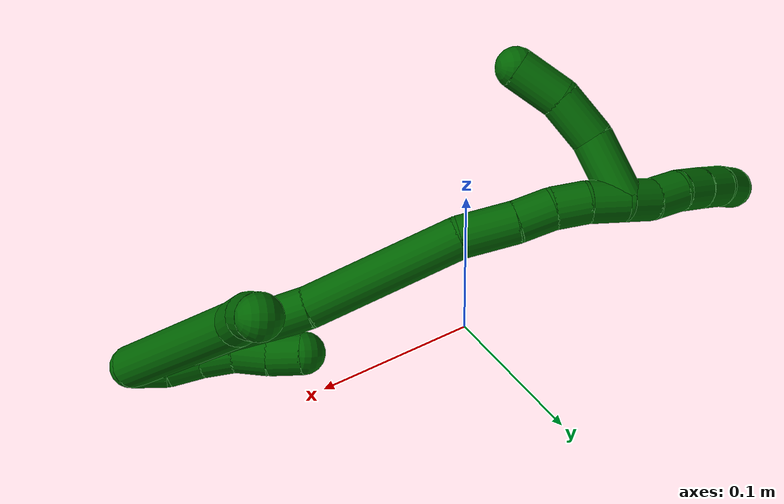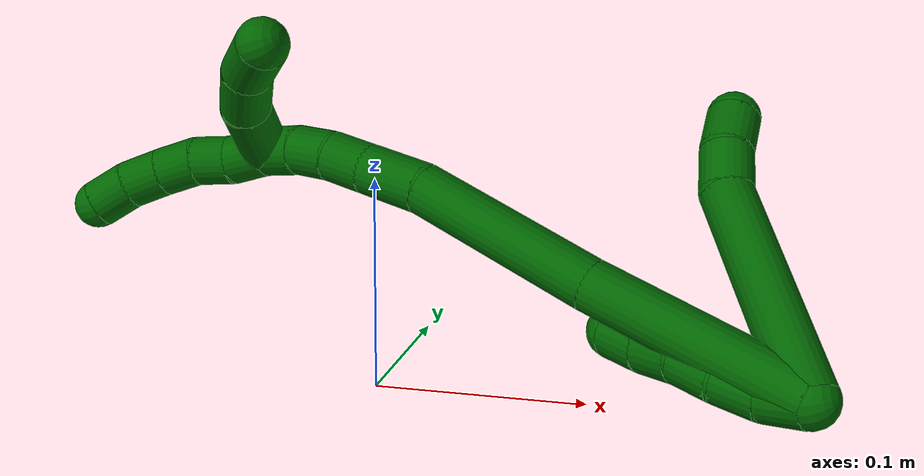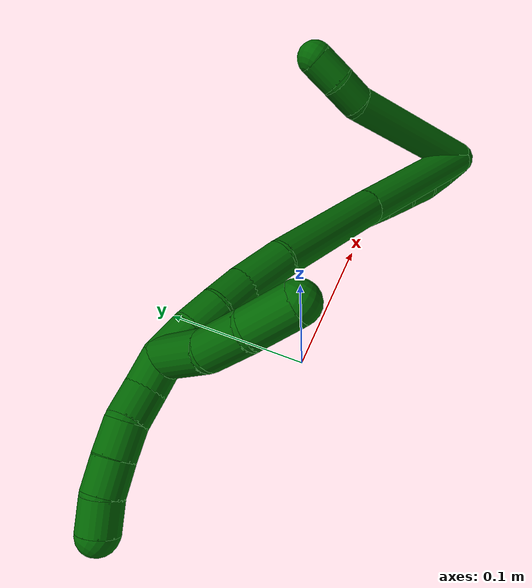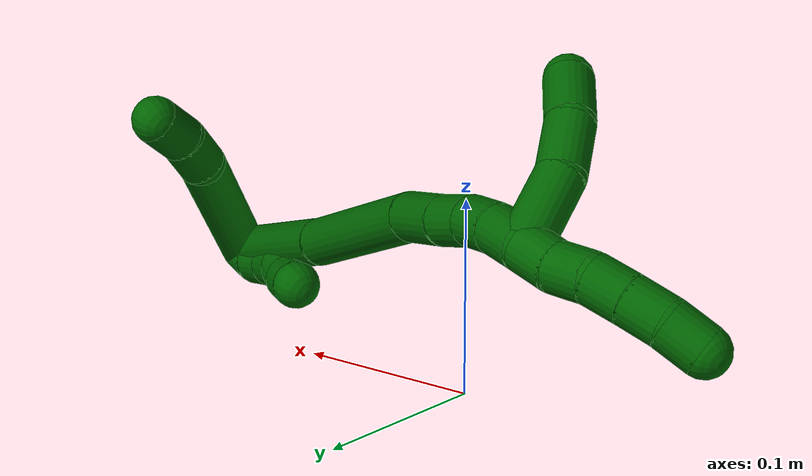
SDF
<sdf version="1.7">
 <world name="default">
  <model name="6">
   <static>0</static>
   <link name="6">
    <collision name="collision-cylinder-e_1_2_8">
     <pose>-0.043869 0.026108 -0.015091 -2.0949 -0.968567 1.47849</pose>
     <geometry><cylinder><radius>0.0125</radius><length>0.106468</length></cylinder></geometry>
     <surface>
      <friction><ode><mu>1.16</mu><mu2>1.16</mu2><slip1>0</slip1><slip2>0</slip2></ode></friction>
      <contact><ode><kp>1e+06</kp><kd>1</kd><max_vel>0</max_vel><min_depth>0.001</min_depth></ode></contact>
     </surface>
    </collision>
    <visual name="visual-cylinder-e_1_2_8">
     <pose>-0.043869 0.026108 -0.015091 -2.0949 -0.968567 1.47849</pose>
     <geometry><cylinder><radius>0.0125</radius><length>0.106468</length></cylinder></geometry>
     <material><ambient>0 0.392157 0.003922 1</ambient></material>
    </visual>
    <collision name="collision-cylinder-e_2_8_9">
     <pose>-0.096791 0.058365 -0.029929 -1.52967 -0.973849 0.940218</pose>
     <geometry><cylinder><radius>0.0125</radius><length>0.021892</length></cylinder></geometry>
     <surface>
      <friction><ode><mu>1.16</mu><mu2>1.16</mu2><slip1>0</slip1><slip2>0</slip2></ode></friction>
      <contact><ode><kp>1e+06</kp><kd>1</kd><max_vel>0</max_vel><min_depth>0.001</min_depth></ode></contact>
     </surface>
    </collision>
    <visual name="visual-cylinder-e_2_8_9">
     <pose>-0.096791 0.058365 -0.029929 -1.52967 -0.973849 0.940218</pose>
     <geometry><cylinder><radius>0.0125</radius><length>0.021892</length></cylinder></geometry>
     <material><ambient>0 0.392157 0.003922 1</ambient></material>
    </visual>
    <collision name="collision-cylinder-e_3_9_6">
     <pose>-0.11332 0.072254 -0.028567 -1.42844 -0.762868 0.669231</pose>
     <geometry><cylinder><radius>0.0125</radius><length>0.021639</length></cylinder></geometry>
     <surface>
      <friction><ode><mu>1.16</mu><mu2>1.16</mu2><slip1>0</slip1><slip2>0</slip2></ode></friction>
      <contact><ode><kp>1e+06</kp><kd>1</kd><max_vel>0</max_vel><min_depth>0.001</min_depth></ode></contact>
     </surface>
    </collision>
    <visual name="visual-cylinder-e_3_9_6">
     <pose>-0.11332 0.072254 -0.028567 -1.42844 -0.762868 0.669231</pose>
     <geometry><cylinder><radius>0.0125</radius><length>0.021639</length></cylinder></geometry>
     <material><ambient>0 0.392157 0.003922 1</ambient></material>
    </visual>
    <collision name="collision-cylinder-e_1_2_10">
     <pose>-0.002192 0.002211 -0.009503 -2.91298 -0.220958 1.53644</pose>
     <geometry><cylinder><radius>0.0125</radius><length>0.02</length></cylinder></geometry>
     <surface>
      <friction><ode><mu>1.16</mu><mu2>1.16</mu2><slip1>0</slip1><slip2>0</slip2></ode></friction>
      <contact><ode><kp>1e+06</kp><kd>1</kd><max_vel>0</max_vel><min_depth>0.001</min_depth></ode></contact>
     </surface>
    </collision>
    <visual name="visual-cylinder-e_1_2_10">
     <pose>-0.002192 0.002211 -0.009503 -2.91298 -0.220958 1.53644</pose>
     <geometry><cylinder><radius>0.0125</radius><length>0.02</length></cylinder></geometry>
     <material><ambient>0 0.392157 0.003922 1</ambient></material>
    </visual>
    <collision name="collision-cylinder-e_2_10_11">
     <pose>-0.009052 0.005617 -0.027768 -3.00615 -0.485747 2.60717</pose>
     <geometry><cylinder><radius>0.0125</radius><length>0.02</length></cylinder></geometry>
     <surface>
      <friction><ode><mu>1.16</mu><mu2>1.16</mu2><slip1>0</slip1><slip2>0</slip2></ode></friction>
      <contact><ode><kp>1e+06</kp><kd>1</kd><max_vel>0</max_vel><min_depth>0.001</min_depth></ode></contact>
     </surface>
    </collision>
    <visual name="visual-cylinder-e_2_10_11">
     <pose>-0.009052 0.005617 -0.027768 -3.00615 -0.485747 2.60717</pose>
     <geometry><cylinder><radius>0.0125</radius><length>0.02</length></cylinder></geometry>
     <material><ambient>0 0.392157 0.003922 1</ambient></material>
    </visual>
    <collision name="collision-cylinder-e_3_11_12">
     <pose>-0.01852 0.009466 -0.044892 -2.8341 -0.500541 2.05161</pose>
     <geometry><cylinder><radius>0.0125</radius><length>0.02</length></cylinder></geometry>
     <surface>
      <friction><ode><mu>1.16</mu><mu2>1.16</mu2><slip1>0</slip1><slip2>0</slip2></ode></friction>
      <contact><ode><kp>1e+06</kp><kd>1</kd><max_vel>0</max_vel><min_depth>0.001</min_depth></ode></contact>
     </surface>
    </collision>
    <visual name="visual-cylinder-e_3_11_12">
     <pose>-0.01852 0.009466 -0.044892 -2.8341 -0.500541 2.05161</pose>
     <geometry><cylinder><radius>0.0125</radius><length>0.02</length></cylinder></geometry>
     <material><ambient>0 0.392157 0.003922 1</ambient></material>
    </visual>
    <collision name="collision-cylinder-e_4_12_13">
     <pose>-0.026121 0.016439 -0.061827 -2.67503 -0.284058 1.08349</pose>
     <geometry><cylinder><radius>0.0125</radius><length>0.02</length></cylinder></geometry>
     <surface>
      <friction><ode><mu>1.16</mu><mu2>1.16</mu2><slip1>0</slip1><slip2>0</slip2></ode></friction>
      <contact><ode><kp>1e+06</kp><kd>1</kd><max_vel>0</max_vel><min_depth>0.001</min_depth></ode></contact>
     </surface>
    </collision>
    <visual name="visual-cylinder-e_4_12_13">
     <pose>-0.026121 0.016439 -0.061827 -2.67503 -0.284058 1.08349</pose>
     <geometry><cylinder><radius>0.0125</radius><length>0.02</length></cylinder></geometry>
     <material><ambient>0 0.392157 0.003922 1</ambient></material>
    </visual>
    <collision name="collision-cylinder-e_5_13_5">
     <pose>-0.033034 0.024514 -0.078707 -2.71684 -0.423537 1.56785</pose>
     <geometry><cylinder><radius>0.0125</radius><length>0.02</length></cylinder></geometry>
     <surface>
      <friction><ode><mu>1.16</mu><mu2>1.16</mu2><slip1>0</slip1><slip2>0</slip2></ode></friction>
      <contact><ode><kp>1e+06</kp><kd>1</kd><max_vel>0</max_vel><min_depth>0.001</min_depth></ode></contact>
     </surface>
    </collision>
    <visual name="visual-cylinder-e_5_13_5">
     <pose>-0.033034 0.024514 -0.078707 -2.71684 -0.423537 1.56785</pose>
     <geometry><cylinder><radius>0.0125</radius><length>0.02</length></cylinder></geometry>
     <material><ambient>0 0.392157 0.003922 1</ambient></material>
    </visual>
    <collision name="collision-cylinder-e_1_2_14">
     <pose>-0.029981 0.007178 -0.043779 -2.97908 -0.594307 2.62176</pose>
     <geometry><cylinder><radius>0.0125</radius><length>0.107089</length></cylinder></geometry>
     <surface>
      <friction><ode><mu>1.16</mu><mu2>1.16</mu2><slip1>0</slip1><slip2>0</slip2></ode></friction>
      <contact><ode><kp>1e+06</kp><kd>1</kd><max_vel>0</max_vel><min_depth>0.001</min_depth></ode></contact>
     </surface>
    </collision>
    <visual name="visual-cylinder-e_1_2_14">
     <pose>-0.029981 0.007178 -0.043779 -2.97908 -0.594307 2.62176</pose>
     <geometry><cylinder><radius>0.0125</radius><length>0.107089</length></cylinder></geometry>
     <material><ambient>0 0.392157 0.003922 1</ambient></material>
    </visual>
    <collision name="collision-cylinder-e_2_14_15">
     <pose>-0.089269 0.016484 -0.124671 -3.08431 -0.66759 2.97672</pose>
     <geometry><cylinder><radius>0.0125</radius><length>0.094673</length></cylinder></geometry>
     <surface>
      <friction><ode><mu>1.16</mu><mu2>1.16</mu2><slip1>0</slip1><slip2>0</slip2></ode></friction>
      <contact><ode><kp>1e+06</kp><kd>1</kd><max_vel>0</max_vel><min_depth>0.001</min_depth></ode></contact>
     </surface>
    </collision>
    <visual name="visual-cylinder-e_2_14_15">
     <pose>-0.089269 0.016484 -0.124671 -3.08431 -0.66759 2.97672</pose>
     <geometry><cylinder><radius>0.0125</radius><length>0.094673</length></cylinder></geometry>
     <material><ambient>0 0.392157 0.003922 1</ambient></material>
    </visual>
    <collision name="collision-cylinder-e_3_15_16">
     <pose>-0.126319 0.020541 -0.176403 -3.01041 -0.483616 2.62104</pose>
     <geometry><cylinder><radius>0.0125</radius><length>0.03331</length></cylinder></geometry>
     <surface>
      <friction><ode><mu>1.16</mu><mu2>1.16</mu2><slip1>0</slip1><slip2>0</slip2></ode></friction>
      <contact><ode><kp>1e+06</kp><kd>1</kd><max_vel>0</max_vel><min_depth>0.001</min_depth></ode></contact>
     </surface>
    </collision>
    <visual name="visual-cylinder-e_3_15_16">
     <pose>-0.126319 0.020541 -0.176403 -3.01041 -0.483616 2.62104</pose>
     <geometry><cylinder><radius>0.0125</radius><length>0.03331</length></cylinder></geometry>
     <material><ambient>0 0.392157 0.003922 1</ambient></material>
    </visual>
    <collision name="collision-cylinder-e_4_16_17">
     <pose>-0.139391 0.022572 -0.200498 -3.13077 -0.51212 3.10025</pose>
     <geometry><cylinder><radius>0.0125</radius><length>0.021744</length></cylinder></geometry>
     <surface>
      <friction><ode><mu>1.16</mu><mu2>1.16</mu2><slip1>0</slip1><slip2>0</slip2></ode></friction>
      <contact><ode><kp>1e+06</kp><kd>1</kd><max_vel>0</max_vel><min_depth>0.001</min_depth></ode></contact>
     </surface>
    </collision>
    <visual name="visual-cylinder-e_4_16_17">
     <pose>-0.139391 0.022572 -0.200498 -3.13077 -0.51212 3.10025</pose>
     <geometry><cylinder><radius>0.0125</radius><length>0.021744</length></cylinder></geometry>
     <material><ambient>0 0.392157 0.003922 1</ambient></material>
    </visual>
    <collision name="collision-cylinder-e_5_17_18">
     <pose>-0.148334 0.023703 -0.219655 -3.0358 -0.355624 2.56858</pose>
     <geometry><cylinder><radius>0.0125</radius><length>0.020769</length></cylinder></geometry>
     <surface>
      <friction><ode><mu>1.16</mu><mu2>1.16</mu2><slip1>0</slip1><slip2>0</slip2></ode></friction>
      <contact><ode><kp>1e+06</kp><kd>1</kd><max_vel>0</max_vel><min_depth>0.001</min_depth></ode></contact>
     </surface>
    </collision>
    <visual name="visual-cylinder-e_5_17_18">
     <pose>-0.148334 0.023703 -0.219655 -3.0358 -0.355624 2.56858</pose>
     <geometry><cylinder><radius>0.0125</radius><length>0.020769</length></cylinder></geometry>
     <material><ambient>0 0.392157 0.003922 1</ambient></material>
    </visual>
    <collision name="collision-cylinder-e_6_18_1">
     <pose>-0.153982 0.02602 -0.240281 -3.02436 -0.18238 2.00048</pose>
     <geometry><cylinder><radius>0.0125</radius><length>0.022415</length></cylinder></geometry>
     <surface>
      <friction><ode><mu>1.16</mu><mu2>1.16</mu2><slip1>0</slip1><slip2>0</slip2></ode></friction>
      <contact><ode><kp>1e+06</kp><kd>1</kd><max_vel>0</max_vel><min_depth>0.001</min_depth></ode></contact>
     </surface>
    </collision>
    <visual name="visual-cylinder-e_6_18_1">
     <pose>-0.153982 0.02602 -0.240281 -3.02436 -0.18238 2.00048</pose>
     <geometry><cylinder><radius>0.0125</radius><length>0.022415</length></cylinder></geometry>
     <material><ambient>0 0.392157 0.003922 1</ambient></material>
    </visual>
    <collision name="collision-cylinder-e_1_1_19">
     <pose>-0.165852 0.01153 -0.243675 1.12443 -0.512278 -0.327056</pose>
     <geometry><cylinder><radius>0.0125</radius><length>0.040139</length></cylinder></geometry>
     <surface>
      <friction><ode><mu>1.16</mu><mu2>1.16</mu2><slip1>0</slip1><slip2>0</slip2></ode></friction>
      <contact><ode><kp>1e+06</kp><kd>1</kd><max_vel>0</max_vel><min_depth>0.001</min_depth></ode></contact>
     </surface>
    </collision>
    <visual name="visual-cylinder-e_1_1_19">
     <pose>-0.165852 0.01153 -0.243675 1.12443 -0.512278 -0.327056</pose>
     <geometry><cylinder><radius>0.0125</radius><length>0.040139</length></cylinder></geometry>
     <material><ambient>0 0.392157 0.003922 1</ambient></material>
    </visual>
    <collision name="collision-cylinder-e_2_19_20">
     <pose>-0.181944 -0.013991 -0.226905 0.813001 -0.43633 -0.190291</pose>
     <geometry><cylinder><radius>0.0125</radius><length>0.029596</length></cylinder></geometry>
     <surface>
      <friction><ode><mu>1.16</mu><mu2>1.16</mu2><slip1>0</slip1><slip2>0</slip2></ode></friction>
      <contact><ode><kp>1e+06</kp><kd>1</kd><max_vel>0</max_vel><min_depth>0.001</min_depth></ode></contact>
     </surface>
    </collision>
    <visual name="visual-cylinder-e_2_19_20">
     <pose>-0.181944 -0.013991 -0.226905 0.813001 -0.43633 -0.190291</pose>
     <geometry><cylinder><radius>0.0125</radius><length>0.029596</length></cylinder></geometry>
     <material><ambient>0 0.392157 0.003922 1</ambient></material>
    </visual>
    <collision name="collision-cylinder-e_3_20_4">
     <pose>-0.191384 -0.032794 -0.205994 0.659293 -0.212187 -0.072837</pose>
     <geometry><cylinder><radius>0.0125</radius><length>0.030265</length></cylinder></geometry>
     <surface>
      <friction><ode><mu>1.16</mu><mu2>1.16</mu2><slip1>0</slip1><slip2>0</slip2></ode></friction>
      <contact><ode><kp>1e+06</kp><kd>1</kd><max_vel>0</max_vel><min_depth>0.001</min_depth></ode></contact>
     </surface>
    </collision>
    <visual name="visual-cylinder-e_3_20_4">
     <pose>-0.191384 -0.032794 -0.205994 0.659293 -0.212187 -0.072837</pose>
     <geometry><cylinder><radius>0.0125</radius><length>0.030265</length></cylinder></geometry>
     <material><ambient>0 0.392157 0.003922 1</ambient></material>
    </visual>
    <collision name="collision-cylinder-e_1_1_21">
     <pose>-0.155931 0.026436 -0.261188 3.05416 0.008416 0.191825</pose>
     <geometry><cylinder><radius>0.0125</radius><length>0.02</length></cylinder></geometry>
     <surface>
      <friction><ode><mu>1.16</mu><mu2>1.16</mu2><slip1>0</slip1><slip2>0</slip2></ode></friction>
      <contact><ode><kp>1e+06</kp><kd>1</kd><max_vel>0</max_vel><min_depth>0.001</min_depth></ode></contact>
     </surface>
    </collision>
    <visual name="visual-cylinder-e_1_1_21">
     <pose>-0.155931 0.026436 -0.261188 3.05416 0.008416 0.191825</pose>
     <geometry><cylinder><radius>0.0125</radius><length>0.02</length></cylinder></geometry>
     <material><ambient>0 0.392157 0.003922 1</ambient></material>
    </visual>
    <collision name="collision-cylinder-e_2_21_22">
     <pose>-0.157809 0.023652 -0.280767 2.94545 -0.197499 -1.57774</pose>
     <geometry><cylinder><radius>0.0125</radius><length>0.02</length></cylinder></geometry>
     <surface>
      <friction><ode><mu>1.16</mu><mu2>1.16</mu2><slip1>0</slip1><slip2>0</slip2></ode></friction>
      <contact><ode><kp>1e+06</kp><kd>1</kd><max_vel>0</max_vel><min_depth>0.001</min_depth></ode></contact>
     </surface>
    </collision>
    <visual name="visual-cylinder-e_2_21_22">
     <pose>-0.157809 0.023652 -0.280767 2.94545 -0.197499 -1.57774</pose>
     <geometry><cylinder><radius>0.0125</radius><length>0.02</length></cylinder></geometry>
     <material><ambient>0 0.392157 0.003922 1</ambient></material>
    </visual>
    <collision name="collision-cylinder-e_3_22_23">
     <pose>-0.158987 0.019227 -0.300032 2.88663 0.078494 0.594557</pose>
     <geometry><cylinder><radius>0.0125</radius><length>0.02</length></cylinder></geometry>
     <surface>
      <friction><ode><mu>1.16</mu><mu2>1.16</mu2><slip1>0</slip1><slip2>0</slip2></ode></friction>
      <contact><ode><kp>1e+06</kp><kd>1</kd><max_vel>0</max_vel><min_depth>0.001</min_depth></ode></contact>
     </surface>
    </collision>
    <visual name="visual-cylinder-e_3_22_23">
     <pose>-0.158987 0.019227 -0.300032 2.88663 0.078494 0.594557</pose>
     <geometry><cylinder><radius>0.0125</radius><length>0.02</length></cylinder></geometry>
     <material><ambient>0 0.392157 0.003922 1</ambient></material>
    </visual>
    <collision name="collision-cylinder-e_4_23_24">
     <pose>-0.156953 0.013987 -0.319219 2.86338 0.125324 0.842615</pose>
     <geometry><cylinder><radius>0.0125</radius><length>0.02</length></cylinder></geometry>
     <surface>
      <friction><ode><mu>1.16</mu><mu2>1.16</mu2><slip1>0</slip1><slip2>0</slip2></ode></friction>
      <contact><ode><kp>1e+06</kp><kd>1</kd><max_vel>0</max_vel><min_depth>0.001</min_depth></ode></contact>
     </surface>
    </collision>
    <visual name="visual-cylinder-e_4_23_24">
     <pose>-0.156953 0.013987 -0.319219 2.86338 0.125324 0.842615</pose>
     <geometry><cylinder><radius>0.0125</radius><length>0.02</length></cylinder></geometry>
     <material><ambient>0 0.392157 0.003922 1</ambient></material>
    </visual>
    <collision name="collision-cylinder-e_5_24_3">
     <pose>-0.152494 0.007858 -0.337597 2.77386 0.326691 1.45034</pose>
     <geometry><cylinder><radius>0.0125</radius><length>0.02</length></cylinder></geometry>
     <surface>
      <friction><ode><mu>1.16</mu><mu2>1.16</mu2><slip1>0</slip1><slip2>0</slip2></ode></friction>
      <contact><ode><kp>1e+06</kp><kd>1</kd><max_vel>0</max_vel><min_depth>0.001</min_depth></ode></contact>
     </surface>
    </collision>
    <visual name="visual-cylinder-e_5_24_3">
     <pose>-0.152494 0.007858 -0.337597 2.77386 0.326691 1.45034</pose>
     <geometry><cylinder><radius>0.0125</radius><length>0.02</length></cylinder></geometry>
     <material><ambient>0 0.392157 0.003922 1</ambient></material>
    </visual>
    <collision name="collision-sphere-3">
     <pose>-0.149285 0.004453 -0.346435 0 -0 0</pose>
     <geometry><sphere><radius>0.0125</radius></sphere></geometry>
     <surface>
      <friction><ode><mu>1.16</mu><mu2>1.16</mu2><slip1>0</slip1><slip2>0</slip2></ode></friction>
      <contact><ode><kp>1e+06</kp><kd>1</kd><max_vel>0</max_vel><min_depth>0.001</min_depth></ode></contact>
     </surface>
    </collision>
    <visual name="visual-sphere-3">
     <pose>-0.149285 0.004453 -0.346435 0 -0 0</pose>
     <geometry><sphere><radius>0.0125</radius></sphere></geometry>
     <material><ambient>0 0.392157 0.003922 1</ambient></material>
    </visual>
    <collision name="collision-sphere-24">
     <pose>-0.155703 0.011263 -0.328759 0 -0 0</pose>
     <geometry><sphere><radius>0.0125</radius></sphere></geometry>
     <surface>
      <friction><ode><mu>1.16</mu><mu2>1.16</mu2><slip1>0</slip1><slip2>0</slip2></ode></friction>
      <contact><ode><kp>1e+06</kp><kd>1</kd><max_vel>0</max_vel><min_depth>0.001</min_depth></ode></contact>
     </surface>
    </collision>
    <visual name="visual-sphere-24">
     <pose>-0.155703 0.011263 -0.328759 0 -0 0</pose>
     <geometry><sphere><radius>0.0125</radius></sphere></geometry>
     <material><ambient>0 0.392157 0.003922 1</ambient></material>
    </visual>
    <collision name="collision-sphere-23">
     <pose>-0.158203 0.016712 -0.309679 0 -0 0</pose>
     <geometry><sphere><radius>0.0125</radius></sphere></geometry>
     <surface>
      <friction><ode><mu>1.16</mu><mu2>1.16</mu2><slip1>0</slip1><slip2>0</slip2></ode></friction>
      <contact><ode><kp>1e+06</kp><kd>1</kd><max_vel>0</max_vel><min_depth>0.001</min_depth></ode></contact>
     </surface>
    </collision>
    <visual name="visual-sphere-23">
     <pose>-0.158203 0.016712 -0.309679 0 -0 0</pose>
     <geometry><sphere><radius>0.0125</radius></sphere></geometry>
     <material><ambient>0 0.392157 0.003922 1</ambient></material>
    </visual>
    <collision name="collision-sphere-22">
     <pose>-0.159771 0.021741 -0.290385 0 -0 0</pose>
     <geometry><sphere><radius>0.0125</radius></sphere></geometry>
     <surface>
      <friction><ode><mu>1.16</mu><mu2>1.16</mu2><slip1>0</slip1><slip2>0</slip2></ode></friction>
      <contact><ode><kp>1e+06</kp><kd>1</kd><max_vel>0</max_vel><min_depth>0.001</min_depth></ode></contact>
     </surface>
    </collision>
    <visual name="visual-sphere-22">
     <pose>-0.159771 0.021741 -0.290385 0 -0 0</pose>
     <geometry><sphere><radius>0.0125</radius></sphere></geometry>
     <material><ambient>0 0.392157 0.003922 1</ambient></material>
    </visual>
    <collision name="collision-sphere-21">
     <pose>-0.155847 0.025563 -0.27115 0 -0 0</pose>
     <geometry><sphere><radius>0.0125</radius></sphere></geometry>
     <surface>
      <friction><ode><mu>1.16</mu><mu2>1.16</mu2><slip1>0</slip1><slip2>0</slip2></ode></friction>
      <contact><ode><kp>1e+06</kp><kd>1</kd><max_vel>0</max_vel><min_depth>0.001</min_depth></ode></contact>
     </surface>
    </collision>
    <visual name="visual-sphere-21">
     <pose>-0.155847 0.025563 -0.27115 0 -0 0</pose>
     <geometry><sphere><radius>0.0125</radius></sphere></geometry>
     <material><ambient>0 0.392157 0.003922 1</ambient></material>
    </visual>
    <collision name="collision-sphere-4">
     <pose>-0.194571 -0.041856 -0.194302 0 -0 0</pose>
     <geometry><sphere><radius>0.0125</radius></sphere></geometry>
     <surface>
      <friction><ode><mu>1.16</mu><mu2>1.16</mu2><slip1>0</slip1><slip2>0</slip2></ode></friction>
      <contact><ode><kp>1e+06</kp><kd>1</kd><max_vel>0</max_vel><min_depth>0.001</min_depth></ode></contact>
     </surface>
    </collision>
    <visual name="visual-sphere-4">
     <pose>-0.194571 -0.041856 -0.194302 0 -0 0</pose>
     <geometry><sphere><radius>0.0125</radius></sphere></geometry>
     <material><ambient>0 0.392157 0.003922 1</ambient></material>
    </visual>
    <collision name="collision-sphere-20">
     <pose>-0.188197 -0.023732 -0.217687 0 -0 0</pose>
     <geometry><sphere><radius>0.0125</radius></sphere></geometry>
     <surface>
      <friction><ode><mu>1.16</mu><mu2>1.16</mu2><slip1>0</slip1><slip2>0</slip2></ode></friction>
      <contact><ode><kp>1e+06</kp><kd>1</kd><max_vel>0</max_vel><min_depth>0.001</min_depth></ode></contact>
     </surface>
    </collision>
    <visual name="visual-sphere-20">
     <pose>-0.188197 -0.023732 -0.217687 0 -0 0</pose>
     <geometry><sphere><radius>0.0125</radius></sphere></geometry>
     <material><ambient>0 0.392157 0.003922 1</ambient></material>
    </visual>
    <collision name="collision-sphere-11">
     <pose>-0.013721 0.006811 -0.036531 0 -0 0</pose>
     <geometry><sphere><radius>0.0125</radius></sphere></geometry>
     <surface>
      <friction><ode><mu>1.16</mu><mu2>1.16</mu2><slip1>0</slip1><slip2>0</slip2></ode></friction>
      <contact><ode><kp>1e+06</kp><kd>1</kd><max_vel>0</max_vel><min_depth>0.001</min_depth></ode></contact>
     </surface>
    </collision>
    <visual name="visual-sphere-11">
     <pose>-0.013721 0.006811 -0.036531 0 -0 0</pose>
     <geometry><sphere><radius>0.0125</radius></sphere></geometry>
     <material><ambient>0 0.392157 0.003922 1</ambient></material>
    </visual>
    <collision name="collision-sphere-10">
     <pose>-0.004383 0.004422 -0.019006 0 -0 0</pose>
     <geometry><sphere><radius>0.0125</radius></sphere></geometry>
     <surface>
      <friction><ode><mu>1.16</mu><mu2>1.16</mu2><slip1>0</slip1><slip2>0</slip2></ode></friction>
      <contact><ode><kp>1e+06</kp><kd>1</kd><max_vel>0</max_vel><min_depth>0.001</min_depth></ode></contact>
     </surface>
    </collision>
    <visual name="visual-sphere-10">
     <pose>-0.004383 0.004422 -0.019006 0 -0 0</pose>
     <geometry><sphere><radius>0.0125</radius></sphere></geometry>
     <material><ambient>0 0.392157 0.003922 1</ambient></material>
    </visual>
    <collision name="collision-sphere-6">
     <pose>-0.120797 0.079996 -0.027457 0 -0 0</pose>
     <geometry><sphere><radius>0.0125</radius></sphere></geometry>
     <surface>
      <friction><ode><mu>1.16</mu><mu2>1.16</mu2><slip1>0</slip1><slip2>0</slip2></ode></friction>
      <contact><ode><kp>1e+06</kp><kd>1</kd><max_vel>0</max_vel><min_depth>0.001</min_depth></ode></contact>
     </surface>
    </collision>
    <visual name="visual-sphere-6">
     <pose>-0.120797 0.079996 -0.027457 0 -0 0</pose>
     <geometry><sphere><radius>0.0125</radius></sphere></geometry>
     <material><ambient>0 0.392157 0.003922 1</ambient></material>
    </visual>
    <collision name="collision-sphere-9">
     <pose>-0.105844 0.064512 -0.029676 0 -0 0</pose>
     <geometry><sphere><radius>0.0125</radius></sphere></geometry>
     <surface>
      <friction><ode><mu>1.16</mu><mu2>1.16</mu2><slip1>0</slip1><slip2>0</slip2></ode></friction>
      <contact><ode><kp>1e+06</kp><kd>1</kd><max_vel>0</max_vel><min_depth>0.001</min_depth></ode></contact>
     </surface>
    </collision>
    <visual name="visual-sphere-9">
     <pose>-0.105844 0.064512 -0.029676 0 -0 0</pose>
     <geometry><sphere><radius>0.0125</radius></sphere></geometry>
     <material><ambient>0 0.392157 0.003922 1</ambient></material>
    </visual>
    <collision name="collision-sphere-2">
     <geometry><sphere><radius>0.0125</radius></sphere></geometry>
     <surface>
      <friction><ode><mu>1.16</mu><mu2>1.16</mu2><slip1>0</slip1><slip2>0</slip2></ode></friction>
      <contact><ode><kp>1e+06</kp><kd>1</kd><max_vel>0</max_vel><min_depth>0.001</min_depth></ode></contact>
     </surface>
    </collision>
    <visual name="visual-sphere-2">
     <geometry><sphere><radius>0.0125</radius></sphere></geometry>
     <material><ambient>0 0.392157 0.003922 1</ambient></material>
    </visual>
    <collision name="collision-sphere-19">
     <pose>-0.17569 -0.004249 -0.236123 0 -0 0</pose>
     <geometry><sphere><radius>0.0125</radius></sphere></geometry>
     <surface>
      <friction><ode><mu>1.16</mu><mu2>1.16</mu2><slip1>0</slip1><slip2>0</slip2></ode></friction>
      <contact><ode><kp>1e+06</kp><kd>1</kd><max_vel>0</max_vel><min_depth>0.001</min_depth></ode></contact>
     </surface>
    </collision>
    <visual name="visual-sphere-19">
     <pose>-0.17569 -0.004249 -0.236123 0 -0 0</pose>
     <geometry><sphere><radius>0.0125</radius></sphere></geometry>
     <material><ambient>0 0.392157 0.003922 1</ambient></material>
    </visual>
    <collision name="collision-sphere-8">
     <pose>-0.087738 0.052217 -0.030182 0 -0 0</pose>
     <geometry><sphere><radius>0.0125</radius></sphere></geometry>
     <surface>
      <friction><ode><mu>1.16</mu><mu2>1.16</mu2><slip1>0</slip1><slip2>0</slip2></ode></friction>
      <contact><ode><kp>1e+06</kp><kd>1</kd><max_vel>0</max_vel><min_depth>0.001</min_depth></ode></contact>
     </surface>
    </collision>
    <visual name="visual-sphere-8">
     <pose>-0.087738 0.052217 -0.030182 0 -0 0</pose>
     <geometry><sphere><radius>0.0125</radius></sphere></geometry>
     <material><ambient>0 0.392157 0.003922 1</ambient></material>
    </visual>
    <collision name="collision-sphere-12">
     <pose>-0.023319 0.012122 -0.053254 0 -0 0</pose>
     <geometry><sphere><radius>0.0125</radius></sphere></geometry>
     <surface>
      <friction><ode><mu>1.16</mu><mu2>1.16</mu2><slip1>0</slip1><slip2>0</slip2></ode></friction>
      <contact><ode><kp>1e+06</kp><kd>1</kd><max_vel>0</max_vel><min_depth>0.001</min_depth></ode></contact>
     </surface>
    </collision>
    <visual name="visual-sphere-12">
     <pose>-0.023319 0.012122 -0.053254 0 -0 0</pose>
     <geometry><sphere><radius>0.0125</radius></sphere></geometry>
     <material><ambient>0 0.392157 0.003922 1</ambient></material>
    </visual>
    <collision name="collision-sphere-13">
     <pose>-0.028924 0.020757 -0.070401 0 -0 0</pose>
     <geometry><sphere><radius>0.0125</radius></sphere></geometry>
     <surface>
      <friction><ode><mu>1.16</mu><mu2>1.16</mu2><slip1>0</slip1><slip2>0</slip2></ode></friction>
      <contact><ode><kp>1e+06</kp><kd>1</kd><max_vel>0</max_vel><min_depth>0.001</min_depth></ode></contact>
     </surface>
    </collision>
    <visual name="visual-sphere-13">
     <pose>-0.028924 0.020757 -0.070401 0 -0 0</pose>
     <geometry><sphere><radius>0.0125</radius></sphere></geometry>
     <material><ambient>0 0.392157 0.003922 1</ambient></material>
    </visual>
    <collision name="collision-sphere-5">
     <pose>-0.037143 0.028271 -0.087013 0 -0 0</pose>
     <geometry><sphere><radius>0.0125</radius></sphere></geometry>
     <surface>
      <friction><ode><mu>1.16</mu><mu2>1.16</mu2><slip1>0</slip1><slip2>0</slip2></ode></friction>
      <contact><ode><kp>1e+06</kp><kd>1</kd><max_vel>0</max_vel><min_depth>0.001</min_depth></ode></contact>
     </surface>
    </collision>
    <visual name="visual-sphere-5">
     <pose>-0.037143 0.028271 -0.087013 0 -0 0</pose>
     <geometry><sphere><radius>0.0125</radius></sphere></geometry>
     <material><ambient>0 0.392157 0.003922 1</ambient></material>
    </visual>
    <collision name="collision-sphere-14">
     <pose>-0.059963 0.014355 -0.087558 0 -0 0</pose>
     <geometry><sphere><radius>0.0125</radius></sphere></geometry>
     <surface>
      <friction><ode><mu>1.16</mu><mu2>1.16</mu2><slip1>0</slip1><slip2>0</slip2></ode></friction>
      <contact><ode><kp>1e+06</kp><kd>1</kd><max_vel>0</max_vel><min_depth>0.001</min_depth></ode></contact>
     </surface>
    </collision>
    <visual name="visual-sphere-14">
     <pose>-0.059963 0.014355 -0.087558 0 -0 0</pose>
     <geometry><sphere><radius>0.0125</radius></sphere></geometry>
     <material><ambient>0 0.392157 0.003922 1</ambient></material>
    </visual>
    <collision name="collision-sphere-15">
     <pose>-0.118575 0.018612 -0.161785 0 -0 0</pose>
     <geometry><sphere><radius>0.0125</radius></sphere></geometry>
     <surface>
      <friction><ode><mu>1.16</mu><mu2>1.16</mu2><slip1>0</slip1><slip2>0</slip2></ode></friction>
      <contact><ode><kp>1e+06</kp><kd>1</kd><max_vel>0</max_vel><min_depth>0.001</min_depth></ode></contact>
     </surface>
    </collision>
    <visual name="visual-sphere-15">
     <pose>-0.118575 0.018612 -0.161785 0 -0 0</pose>
     <geometry><sphere><radius>0.0125</radius></sphere></geometry>
     <material><ambient>0 0.392157 0.003922 1</ambient></material>
    </visual>
    <collision name="collision-sphere-16">
     <pose>-0.134063 0.02247 -0.191021 0 -0 0</pose>
     <geometry><sphere><radius>0.0125</radius></sphere></geometry>
     <surface>
      <friction><ode><mu>1.16</mu><mu2>1.16</mu2><slip1>0</slip1><slip2>0</slip2></ode></friction>
      <contact><ode><kp>1e+06</kp><kd>1</kd><max_vel>0</max_vel><min_depth>0.001</min_depth></ode></contact>
     </surface>
    </collision>
    <visual name="visual-sphere-16">
     <pose>-0.134063 0.02247 -0.191021 0 -0 0</pose>
     <geometry><sphere><radius>0.0125</radius></sphere></geometry>
     <material><ambient>0 0.392157 0.003922 1</ambient></material>
    </visual>
    <collision name="collision-sphere-17">
     <pose>-0.144718 0.022675 -0.209974 0 -0 0</pose>
     <geometry><sphere><radius>0.0125</radius></sphere></geometry>
     <surface>
      <friction><ode><mu>1.16</mu><mu2>1.16</mu2><slip1>0</slip1><slip2>0</slip2></ode></friction>
      <contact><ode><kp>1e+06</kp><kd>1</kd><max_vel>0</max_vel><min_depth>0.001</min_depth></ode></contact>
     </surface>
    </collision>
    <visual name="visual-sphere-17">
     <pose>-0.144718 0.022675 -0.209974 0 -0 0</pose>
     <geometry><sphere><radius>0.0125</radius></sphere></geometry>
     <material><ambient>0 0.392157 0.003922 1</ambient></material>
    </visual>
    <collision name="collision-sphere-18">
     <pose>-0.15195 0.024731 -0.229335 0 -0 0</pose>
     <geometry><sphere><radius>0.0125</radius></sphere></geometry>
     <surface>
      <friction><ode><mu>1.16</mu><mu2>1.16</mu2><slip1>0</slip1><slip2>0</slip2></ode></friction>
      <contact><ode><kp>1e+06</kp><kd>1</kd><max_vel>0</max_vel><min_depth>0.001</min_depth></ode></contact>
     </surface>
    </collision>
    <visual name="visual-sphere-18">
     <pose>-0.15195 0.024731 -0.229335 0 -0 0</pose>
     <geometry><sphere><radius>0.0125</radius></sphere></geometry>
     <material><ambient>0 0.392157 0.003922 1</ambient></material>
    </visual>
    <collision name="collision-sphere-1">
     <pose>-0.156015 0.027309 -0.251227 0 -0 0</pose>
     <geometry><sphere><radius>0.0125</radius></sphere></geometry>
     <surface>
      <friction><ode><mu>1.16</mu><mu2>1.16</mu2><slip1>0</slip1><slip2>0</slip2></ode></friction>
      <contact><ode><kp>1e+06</kp><kd>1</kd><max_vel>0</max_vel><min_depth>0.001</min_depth></ode></contact>
     </surface>
    </collision>
    <visual name="visual-sphere-1">
     <pose>-0.156015 0.027309 -0.251227 0 -0 0</pose>
     <geometry><sphere><radius>0.0125</radius></sphere></geometry>
     <material><ambient>0 0.392157 0.003922 1</ambient></material>
    </visual>
    <inertial>
     <pose>-0.093241 0.016327 -0.128954 0 -0 0</pose>
     <mass>0.75</mass>
     <inertia>
      <ixx>-2.3e-05</ixx>
      <ixy>0</ixy>
      <ixz>0</ixz>
      <iyy>0.000384</iyy>
      <iyz>0</iyz>
      <izz>0.000112</izz>
     </inertia>
    </inertial>
   </link>
   <pose>0.195843 -0.050101 0.028772 -0.378838 1.25432 -0.600324</pose>
  </model>
 </world>
</sdf>
